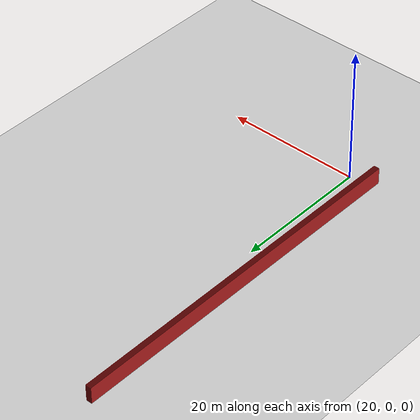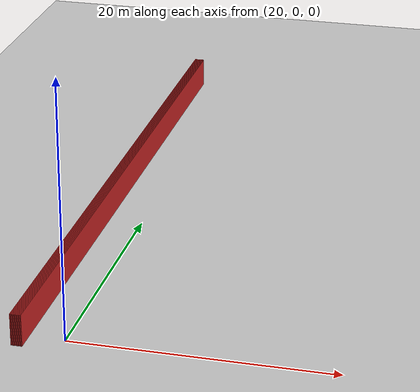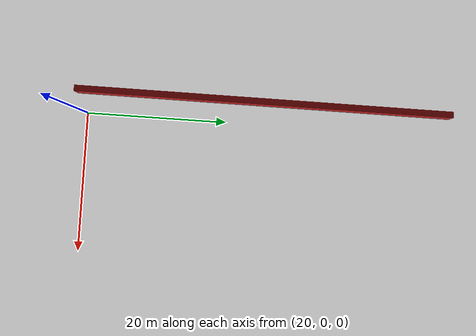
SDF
<sdf version="1.4">
 <world name="1_wall">
  <model name="ground_plane">
   <static>1</static>
   <link name="link">
    <collision name="collision">
     <geometry><plane><normal>0 0 1</normal><size>1000 1000</size></plane></geometry>
     <surface><friction><ode><mu>100</mu><mu2>50</mu2></ode></friction></surface>
    </collision>
    <visual name="visual">
     <cast_shadows>0</cast_shadows>
     <geometry><plane><normal>0 0 1</normal><size>10000 10000</size></plane></geometry>
     <material>
      <script><uri>file://media/materials/scripts/gazebo.material</uri><name>Gazebo/Grey</name></script>
     </material>
    </visual>
    <velocity_decay><linear>0</linear><angular>0</angular></velocity_decay>
   </link>
  </model>
  <model name="Wall_359">
   <static>1</static>
   <link name="Wall_359">
    <collision name="Wall_Collision_359">
     <geometry><box><size>53.65 0.05 2.5</size></box></geometry>
     <pose>0 0 1.25 0 -0 0</pose>
    </collision>
    <visual name="Wall_Visual_359">
     <pose>0 0 1.25 0 -0 0</pose>
     <geometry><box><size>53.65 0.05 2.5</size></box></geometry>
     <material>
      <script><uri>file://media/materials/scripts/gazebo.material</uri><name>Gazebo/Red</name></script>
     </material>
    </visual>
    <velocity_decay><linear>0</linear><angular>0</angular></velocity_decay>
    <pose>16.45 25.3 0 0 0 1.5707963267948966</pose>
   </link>
  </model>
  <model name="Wall_360">
   <static>1</static>
   <link name="Wall_360">
    <collision name="Wall_Collision_360">
     <geometry><box><size>53.65 0.05 2.5</size></box></geometry>
     <pose>0 0 1.25 0 -0 0</pose>
    </collision>
    <visual name="Wall_Visual_360">
     <pose>0 0 1.25 0 -0 0</pose>
     <geometry><box><size>53.65 0.05 2.5</size></box></geometry>
     <material>
      <script><uri>file://media/materials/scripts/gazebo.material</uri><name>Gazebo/Red</name></script>
     </material>
    </visual>
    <velocity_decay><linear>0</linear><angular>0</angular></velocity_decay>
    <pose>16.5 25.3 0 0 0 1.5707963267948966</pose>
   </link>
  </model>
  <model name="Wall_361">
   <static>1</static>
   <link name="Wall_361">
    <collision name="Wall_Collision_361">
     <geometry><box><size>53.65 0.05 2.5</size></box></geometry>
     <pose>0 0 1.25 0 -0 0</pose>
    </collision>
    <visual name="Wall_Visual_361">
     <pose>0 0 1.25 0 -0 0</pose>
     <geometry><box><size>53.65 0.05 2.5</size></box></geometry>
     <material>
      <script><uri>file://media/materials/scripts/gazebo.material</uri><name>Gazebo/Red</name></script>
     </material>
    </visual>
    <velocity_decay><linear>0</linear><angular>0</angular></velocity_decay>
    <pose>16.55 25.3 0 0 0 1.5707963267948966</pose>
   </link>
  </model>
  <model name="Wall_362">
   <static>1</static>
   <link name="Wall_362">
    <collision name="Wall_Collision_362">
     <geometry><box><size>53.65 0.05 2.5</size></box></geometry>
     <pose>0 0 1.25 0 -0 0</pose>
    </collision>
    <visual name="Wall_Visual_362">
     <pose>0 0 1.25 0 -0 0</pose>
     <geometry><box><size>53.65 0.05 2.5</size></box></geometry>
     <material>
      <script><uri>file://media/materials/scripts/gazebo.material</uri><name>Gazebo/Red</name></script>
     </material>
    </visual>
    <velocity_decay><linear>0</linear><angular>0</angular></velocity_decay>
    <pose>16.6 25.3 0 0 0 1.5707963267948966</pose>
   </link>
  </model>
  <model name="Wall_363">
   <static>1</static>
   <link name="Wall_363">
    <collision name="Wall_Collision_363">
     <geometry><box><size>53.65 0.05 2.5</size></box></geometry>
     <pose>0 0 1.25 0 -0 0</pose>
    </collision>
    <visual name="Wall_Visual_363">
     <pose>0 0 1.25 0 -0 0</pose>
     <geometry><box><size>53.65 0.05 2.5</size></box></geometry>
     <material>
      <script><uri>file://media/materials/scripts/gazebo.material</uri><name>Gazebo/Red</name></script>
     </material>
    </visual>
    <velocity_decay><linear>0</linear><angular>0</angular></velocity_decay>
    <pose>16.65 25.3 0 0 0 1.5707963267948966</pose>
   </link>
  </model>
  <model name="Wall_364">
   <static>1</static>
   <link name="Wall_364">
    <collision name="Wall_Collision_364">
     <geometry><box><size>53.65 0.05 2.5</size></box></geometry>
     <pose>0 0 1.25 0 -0 0</pose>
    </collision>
    <visual name="Wall_Visual_364">
     <pose>0 0 1.25 0 -0 0</pose>
     <geometry><box><size>53.65 0.05 2.5</size></box></geometry>
     <material>
      <script><uri>file://media/materials/scripts/gazebo.material</uri><name>Gazebo/Red</name></script>
     </material>
    </visual>
    <velocity_decay><linear>0</linear><angular>0</angular></velocity_decay>
    <pose>16.7 25.3 0 0 0 1.5707963267948966</pose>
   </link>
  </model>
  <model name="Wall_365">
   <static>1</static>
   <link name="Wall_365">
    <collision name="Wall_Collision_365">
     <geometry><box><size>53.65 0.05 2.5</size></box></geometry>
     <pose>0 0 1.25 0 -0 0</pose>
    </collision>
    <visual name="Wall_Visual_365">
     <pose>0 0 1.25 0 -0 0</pose>
     <geometry><box><size>53.65 0.05 2.5</size></box></geometry>
     <material>
      <script><uri>file://media/materials/scripts/gazebo.material</uri><name>Gazebo/Red</name></script>
     </material>
    </visual>
    <velocity_decay><linear>0</linear><angular>0</angular></velocity_decay>
    <pose>16.75 25.3 0 0 0 1.5707963267948966</pose>
   </link>
  </model>
  <model name="Wall_366">
   <static>1</static>
   <link name="Wall_366">
    <collision name="Wall_Collision_366">
     <geometry><box><size>53.65 0.05 2.5</size></box></geometry>
     <pose>0 0 1.25 0 -0 0</pose>
    </collision>
    <visual name="Wall_Visual_366">
     <pose>0 0 1.25 0 -0 0</pose>
     <geometry><box><size>53.65 0.05 2.5</size></box></geometry>
     <material>
      <script><uri>file://media/materials/scripts/gazebo.material</uri><name>Gazebo/Red</name></script>
     </material>
    </visual>
    <velocity_decay><linear>0</linear><angular>0</angular></velocity_decay>
    <pose>16.8 25.3 0 0 0 1.5707963267948966</pose>
   </link>
  </model>
  <model name="Wall_367">
   <static>1</static>
   <link name="Wall_367">
    <collision name="Wall_Collision_367">
     <geometry><box><size>53.65 0.05 2.5</size></box></geometry>
     <pose>0 0 1.25 0 -0 0</pose>
    </collision>
    <visual name="Wall_Visual_367">
     <pose>0 0 1.25 0 -0 0</pose>
     <geometry><box><size>53.65 0.05 2.5</size></box></geometry>
     <material>
      <script><uri>file://media/materials/scripts/gazebo.material</uri><name>Gazebo/Red</name></script>
     </material>
    </visual>
    <velocity_decay><linear>0</linear><angular>0</angular></velocity_decay>
    <pose>16.85 25.3 0 0 0 1.5707963267948966</pose>
   </link>
  </model>
  <model name="Wall_368">
   <static>1</static>
   <link name="Wall_368">
    <collision name="Wall_Collision_368">
     <geometry><box><size>53.65 0.05 2.5</size></box></geometry>
     <pose>0 0 1.25 0 -0 0</pose>
    </collision>
    <visual name="Wall_Visual_368">
     <pose>0 0 1.25 0 -0 0</pose>
     <geometry><box><size>53.65 0.05 2.5</size></box></geometry>
     <material>
      <script><uri>file://media/materials/scripts/gazebo.material</uri><name>Gazebo/Red</name></script>
     </material>
    </visual>
    <velocity_decay><linear>0</linear><angular>0</angular></velocity_decay>
    <pose>16.9 25.3 0 0 0 1.5707963267948966</pose>
   </link>
  </model>
  <model name="Wall_369">
   <static>1</static>
   <link name="Wall_369">
    <collision name="Wall_Collision_369">
     <geometry><box><size>53.65 0.05 2.5</size></box></geometry>
     <pose>0 0 1.25 0 -0 0</pose>
    </collision>
    <visual name="Wall_Visual_369">
     <pose>0 0 1.25 0 -0 0</pose>
     <geometry><box><size>53.65 0.05 2.5</size></box></geometry>
     <material>
      <script><uri>file://media/materials/scripts/gazebo.material</uri><name>Gazebo/Red</name></script>
     </material>
    </visual>
    <velocity_decay><linear>0</linear><angular>0</angular></velocity_decay>
    <pose>16.95 25.3 0 0 0 1.5707963267948966</pose>
   </link>
  </model>
  <model name="Wall_370">
   <static>1</static>
   <link name="Wall_370">
    <collision name="Wall_Collision_370">
     <geometry><box><size>53.65 0.05 2.5</size></box></geometry>
     <pose>0 0 1.25 0 -0 0</pose>
    </collision>
    <visual name="Wall_Visual_370">
     <pose>0 0 1.25 0 -0 0</pose>
     <geometry><box><size>53.65 0.05 2.5</size></box></geometry>
     <material>
      <script><uri>file://media/materials/scripts/gazebo.material</uri><name>Gazebo/Red</name></script>
     </material>
    </visual>
    <velocity_decay><linear>0</linear><angular>0</angular></velocity_decay>
    <pose>17.0 25.3 0 0 0 1.5707963267948966</pose>
   </link>
  </model>
  <model name="Wall_371">
   <static>1</static>
   <link name="Wall_371">
    <collision name="Wall_Collision_371">
     <geometry><box><size>53.65 0.05 2.5</size></box></geometry>
     <pose>0 0 1.25 0 -0 0</pose>
    </collision>
    <visual name="Wall_Visual_371">
     <pose>0 0 1.25 0 -0 0</pose>
     <geometry><box><size>53.65 0.05 2.5</size></box></geometry>
     <material>
      <script><uri>file://media/materials/scripts/gazebo.material</uri><name>Gazebo/Red</name></script>
     </material>
    </visual>
    <velocity_decay><linear>0</linear><angular>0</angular></velocity_decay>
    <pose>17.05 25.3 0 0 0 1.5707963267948966</pose>
   </link>
  </model>
  <model name="Wall_372">
   <static>1</static>
   <link name="Wall_372">
    <collision name="Wall_Collision_372">
     <geometry><box><size>53.65 0.05 2.5</size></box></geometry>
     <pose>0 0 1.25 0 -0 0</pose>
    </collision>
    <visual name="Wall_Visual_372">
     <pose>0 0 1.25 0 -0 0</pose>
     <geometry><box><size>53.65 0.05 2.5</size></box></geometry>
     <material>
      <script><uri>file://media/materials/scripts/gazebo.material</uri><name>Gazebo/Red</name></script>
     </material>
    </visual>
    <velocity_decay><linear>0</linear><angular>0</angular></velocity_decay>
    <pose>17.1 25.3 0 0 0 1.5707963267948966</pose>
   </link>
  </model>
  <model name="Wall_373">
   <static>1</static>
   <link name="Wall_373">
    <collision name="Wall_Collision_373">
     <geometry><box><size>53.65 0.05 2.5</size></box></geometry>
     <pose>0 0 1.25 0 -0 0</pose>
    </collision>
    <visual name="Wall_Visual_373">
     <pose>0 0 1.25 0 -0 0</pose>
     <geometry><box><size>53.65 0.05 2.5</size></box></geometry>
     <material>
      <script><uri>file://media/materials/scripts/gazebo.material</uri><name>Gazebo/Red</name></script>
     </material>
    </visual>
    <velocity_decay><linear>0</linear><angular>0</angular></velocity_decay>
    <pose>17.15 25.3 0 0 0 1.5707963267948966</pose>
   </link>
  </model>
  <model name="Wall_374">
   <static>1</static>
   <link name="Wall_374">
    <collision name="Wall_Collision_374">
     <geometry><box><size>53.65 0.05 2.5</size></box></geometry>
     <pose>0 0 1.25 0 -0 0</pose>
    </collision>
    <visual name="Wall_Visual_374">
     <pose>0 0 1.25 0 -0 0</pose>
     <geometry><box><size>53.65 0.05 2.5</size></box></geometry>
     <material>
      <script><uri>file://media/materials/scripts/gazebo.material</uri><name>Gazebo/Red</name></script>
     </material>
    </visual>
    <velocity_decay><linear>0</linear><angular>0</angular></velocity_decay>
    <pose>17.2 25.3 0 0 0 1.5707963267948966</pose>
   </link>
  </model>
  <model name="Wall_375">
   <static>1</static>
   <link name="Wall_375">
    <collision name="Wall_Collision_375">
     <geometry><box><size>53.65 0.05 2.5</size></box></geometry>
     <pose>0 0 1.25 0 -0 0</pose>
    </collision>
    <visual name="Wall_Visual_375">
     <pose>0 0 1.25 0 -0 0</pose>
     <geometry><box><size>53.65 0.05 2.5</size></box></geometry>
     <material>
      <script><uri>file://media/materials/scripts/gazebo.material</uri><name>Gazebo/Red</name></script>
     </material>
    </visual>
    <velocity_decay><linear>0</linear><angular>0</angular></velocity_decay>
    <pose>17.25 25.3 0 0 0 1.5707963267948966</pose>
   </link>
  </model>
 </world>
</sdf>
